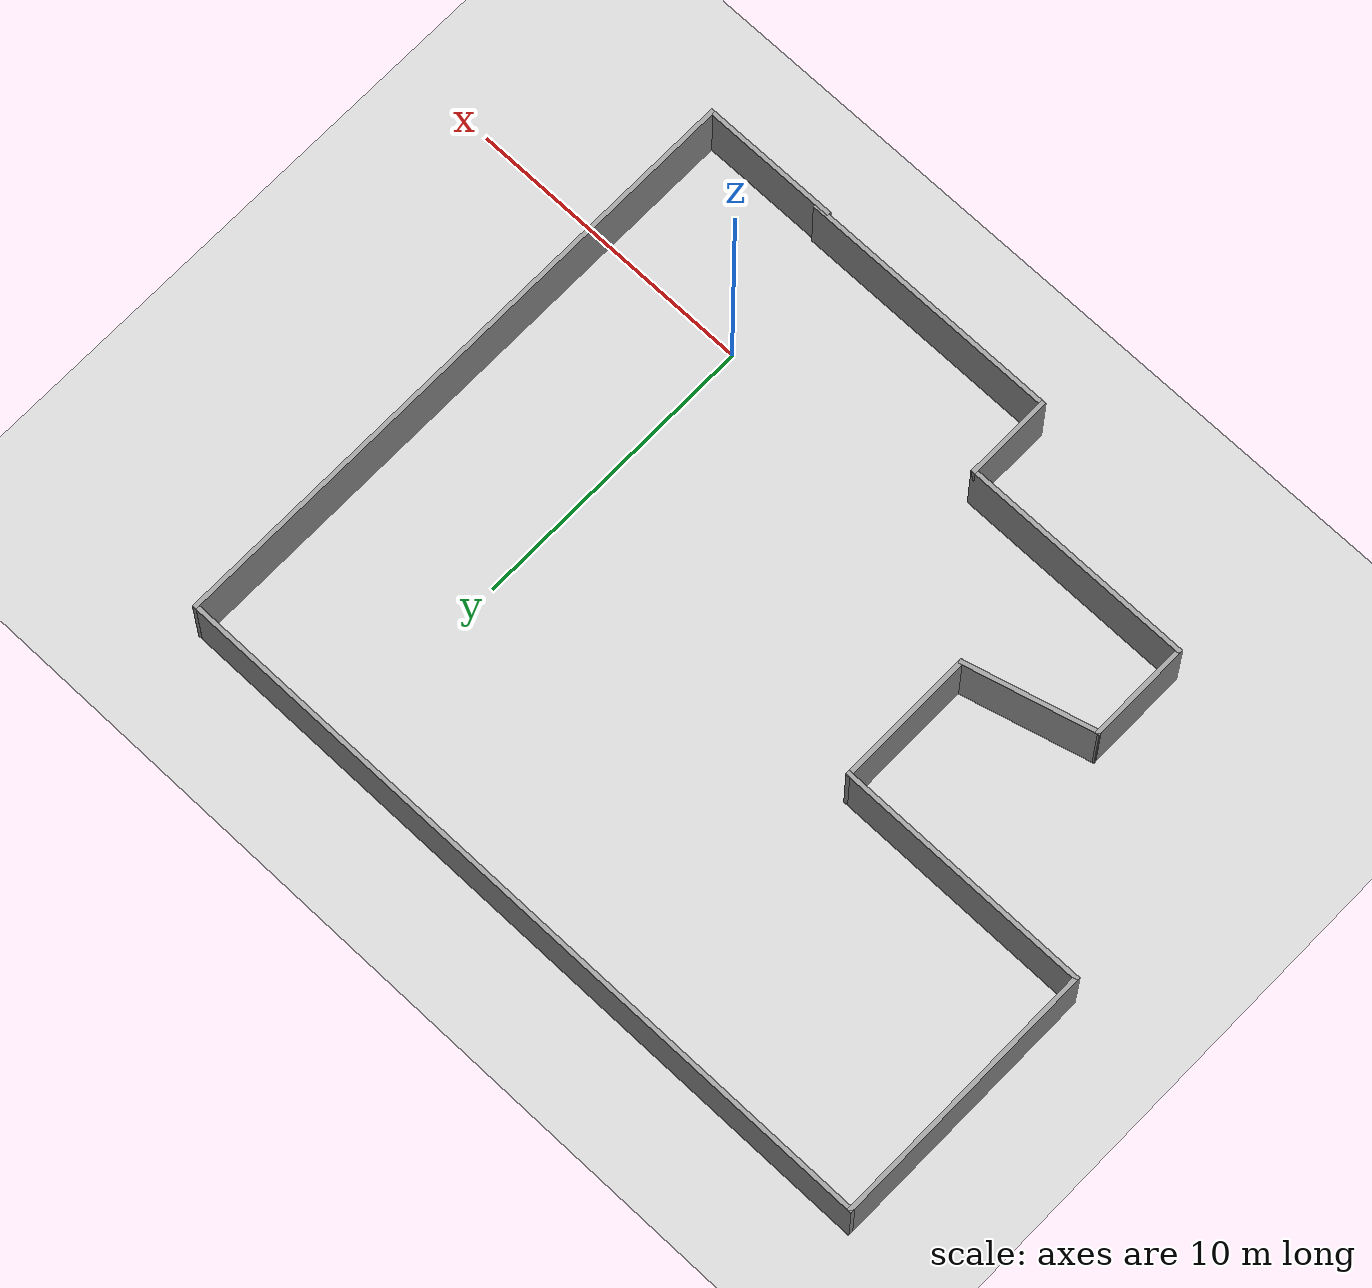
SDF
<sdf version="1.6">
 <world name="default">
  <light name="sun" type="directional">
   <pose>0 0 10 0 -0 0</pose>
   <diffuse>0.8 0.8 0.8 1</diffuse>
   <specular>0.2 0.2 0.2 1</specular>
   <attenuation>
    <range>1000</range>
    <constant>0.9</constant>
    <linear>0.01</linear>
    <quadratic>0.001</quadratic>
   </attenuation>
   <direction>-0.5 0.1 -0.9</direction>
  </light>
  <model name="ground_plane">
   <static>1</static>
   <link name="link">
    <collision name="collision">
     <geometry><plane><normal>0 0 1</normal><size>100 100</size></plane></geometry>
     <surface>
      <contact><collide_bitmask>65535</collide_bitmask></contact>
      <friction><ode><mu>100</mu><mu2>50</mu2></ode></friction>
     </surface>
    </collision>
    <visual name="visual">
     <cast_shadows>0</cast_shadows>
     <geometry><plane><normal>0 0 1</normal><size>100 100</size></plane></geometry>
     <material>
      <script><uri>file://media/materials/scripts/gazebo.material</uri><name>Gazebo/Grey</name></script>
     </material>
    </visual>
   </link>
  </model>
  <gravity>0 0 -9.8</gravity>
  <magnetic_field>6e-06 2.3e-05 -4.2e-05</magnetic_field>
  <atmosphere type="adiabatic"/>
  <physics name="default_physics" default="0" type="ode">
   <max_step_size>0.001</max_step_size>
   <real_time_factor>1</real_time_factor>
   <real_time_update_rate>1000</real_time_update_rate>
  </physics>
  <scene><ambient>0.4 0.4 0.4 1</ambient><background>0.7 0.7 0.7 1</background><shadows>1</shadows></scene>
  <spherical_coordinates>
   <surface_model>EARTH_WGS84</surface_model>
   <latitude_deg>0</latitude_deg>
   <longitude_deg>0</longitude_deg>
   <elevation>0</elevation>
   <heading_deg>0</heading_deg>
  </spherical_coordinates>
  <model name="myworld">
   <pose>-7.645 6.18 0 0 -0 0</pose>
   <link name="Wall_0">
    <collision name="Wall_0_Collision">
     <geometry><box><size>4.75 0.15 2.5</size></box></geometry>
     <pose>0 0 1.25 0 -0 0</pose>
    </collision>
    <visual name="Wall_0_Visual">
     <pose>0 0 1.25 0 -0 0</pose>
     <geometry><box><size>4.75 0.15 2.5</size></box></geometry>
     <material>
      <script><uri>file://media/materials/scripts/gazebo.material</uri><name>Gazebo/Grey</name></script>
      <ambient>1 1 1 1</ambient>
     </material>
     <meta><layer>0</layer></meta>
    </visual>
    <pose>10.375 -10.55 0 0 -0 0</pose>
   </link>
   <link name="Wall_1">
    <collision name="Wall_1_Collision">
     <geometry><box><size>21.25 0.15 2.5</size></box></geometry>
     <pose>0 0 1.25 0 -0 0</pose>
    </collision>
    <visual name="Wall_1_Visual">
     <pose>0 0 1.25 0 -0 0</pose>
     <geometry><box><size>21.25 0.15 2.5</size></box></geometry>
     <material>
      <script><uri>file://media/materials/scripts/gazebo.material</uri><name>Gazebo/Grey</name></script>
      <ambient>1 1 1 1</ambient>
     </material>
     <meta><layer>0</layer></meta>
    </visual>
    <pose>12.675 0 0 0 -0 1.5708</pose>
   </link>
   <link name="Wall_10">
    <collision name="Wall_10_Collision">
     <geometry><box><size>9 0.15 2.5</size></box></geometry>
     <pose>0 0 1.25 0 -0 0</pose>
    </collision>
    <visual name="Wall_10_Visual">
     <pose>0 0 1.25 0 -0 0</pose>
     <geometry><box><size>9 0.15 2.5</size></box></geometry>
     <material>
      <script><uri>file://media/materials/scripts/gazebo.material</uri><name>Gazebo/Grey</name></script>
      <ambient>1 1 1 1</ambient>
     </material>
     <meta><layer>0</layer></meta>
    </visual>
    <pose>3.99822 -10.4759 0 0 -0 0</pose>
   </link>
   <link name="Wall_2">
    <collision name="Wall_2_Collision">
     <geometry><box><size>25.5 0.15 2.5</size></box></geometry>
     <pose>0 0 1.25 0 -0 0</pose>
    </collision>
    <visual name="Wall_2_Visual">
     <pose>0 0 1.25 0 -0 0</pose>
     <geometry><box><size>25.5 0.15 2.5</size></box></geometry>
     <material>
      <script><uri>file://media/materials/scripts/gazebo.material</uri><name>Gazebo/Grey</name></script>
      <ambient>1 1 1 1</ambient>
     </material>
     <meta><layer>0</layer></meta>
    </visual>
    <pose>-0 10.55 0 0 -0 3.14159</pose>
   </link>
   <link name="Wall_3">
    <collision name="Wall_3_Collision">
     <geometry><box><size>9.25 0.15 2.5</size></box></geometry>
     <pose>0 0 1.25 0 -0 0</pose>
    </collision>
    <visual name="Wall_3_Visual">
     <pose>0 0 1.25 0 -0 0</pose>
     <geometry><box><size>9.25 0.15 2.5</size></box></geometry>
     <material>
      <script><uri>file://media/materials/scripts/gazebo.material</uri><name>Gazebo/Grey</name></script>
      <ambient>1 1 1 1</ambient>
     </material>
     <meta><layer>0</layer></meta>
    </visual>
    <pose>-12.675 6 0 0 -0 -1.5708</pose>
   </link>
   <link name="Wall_4">
    <collision name="Wall_4_Collision">
     <geometry><box><size>8.75 0.15 2.5</size></box></geometry>
     <pose>0 0 1.25 0 -0 0</pose>
    </collision>
    <visual name="Wall_4_Visual">
     <pose>0 0 1.25 0 -0 0</pose>
     <geometry><box><size>8.75 0.15 2.5</size></box></geometry>
     <material>
      <script><uri>file://media/materials/scripts/gazebo.material</uri><name>Gazebo/Grey</name></script>
      <ambient>1 1 1 1</ambient>
     </material>
     <meta><layer>0</layer></meta>
    </visual>
    <pose>-8.375 1.45 0 0 -0 0</pose>
   </link>
   <link name="Wall_5">
    <collision name="Wall_5_Collision">
     <geometry><box><size>4.75 0.15 2.5</size></box></geometry>
     <pose>0 0 1.25 0 -0 0</pose>
    </collision>
    <visual name="Wall_5_Visual">
     <pose>0 0 1.25 0 -0 0</pose>
     <geometry><box><size>4.75 0.15 2.5</size></box></geometry>
     <material>
      <script><uri>file://media/materials/scripts/gazebo.material</uri><name>Gazebo/Grey</name></script>
      <ambient>1 1 1 1</ambient>
     </material>
     <meta><layer>0</layer></meta>
    </visual>
    <pose>-4.075 -0.85 0 0 -0 -1.5708</pose>
   </link>
   <link name="Wall_6">
    <collision name="Wall_6_Collision">
     <geometry><box><size>4.5 0.15 2.5</size></box></geometry>
     <pose>0 0 1.25 0 -0 0</pose>
    </collision>
    <visual name="Wall_6_Visual">
     <pose>0 0 1.25 0 -0 0</pose>
     <geometry><box><size>4.5 0.15 2.5</size></box></geometry>
     <material>
      <script><uri>file://media/materials/scripts/gazebo.material</uri><name>Gazebo/Grey</name></script>
      <ambient>1 1 1 1</ambient>
     </material>
     <meta><layer>0</layer></meta>
    </visual>
    <pose>-6.17589 -3.71293 0 0 -0 -2.87979</pose>
   </link>
   <link name="Wall_7">
    <collision name="Wall_7_Collision">
     <geometry><box><size>3.5 0.15 2.5</size></box></geometry>
     <pose>0 0 1.25 0 -0 0</pose>
    </collision>
    <visual name="Wall_7_Visual">
     <pose>0 0 1.25 0 -0 0</pose>
     <geometry><box><size>3.5 0.15 2.5</size></box></geometry>
     <material>
      <script><uri>file://media/materials/scripts/gazebo.material</uri><name>Gazebo/Grey</name></script>
      <ambient>1 1 1 1</ambient>
     </material>
     <meta><layer>0</layer></meta>
    </visual>
    <pose>-8.27678 -5.95086 0 0 -0 -1.5708</pose>
   </link>
   <link name="Wall_8">
    <collision name="Wall_8_Collision">
     <geometry><box><size>8 0.15 2.5</size></box></geometry>
     <pose>0 0 1.25 0 -0 0</pose>
    </collision>
    <visual name="Wall_8_Visual">
     <pose>0 0 1.25 0 -0 0</pose>
     <geometry><box><size>8 0.15 2.5</size></box></geometry>
     <material>
      <script><uri>file://media/materials/scripts/gazebo.material</uri><name>Gazebo/Grey</name></script>
      <ambient>1 1 1 1</ambient>
     </material>
     <meta><layer>0</layer></meta>
    </visual>
    <pose>-4.35178 -7.62586 0 0 -0 0</pose>
   </link>
   <link name="Wall_9">
    <collision name="Wall_9_Collision">
     <geometry><box><size>3 0.15 2.5</size></box></geometry>
     <pose>0 0 1.25 0 -0 0</pose>
    </collision>
    <visual name="Wall_9_Visual">
     <pose>0 0 1.25 0 -0 0</pose>
     <geometry><box><size>3 0.15 2.5</size></box></geometry>
     <material>
      <script><uri>file://media/materials/scripts/gazebo.material</uri><name>Gazebo/Grey</name></script>
      <ambient>1 1 1 1</ambient>
     </material>
     <meta><layer>0</layer></meta>
    </visual>
    <pose>-0.426778 -9.05086 0 0 -0 -1.5708</pose>
   </link>
   <static>1</static>
  </model>
 </world>
</sdf>
